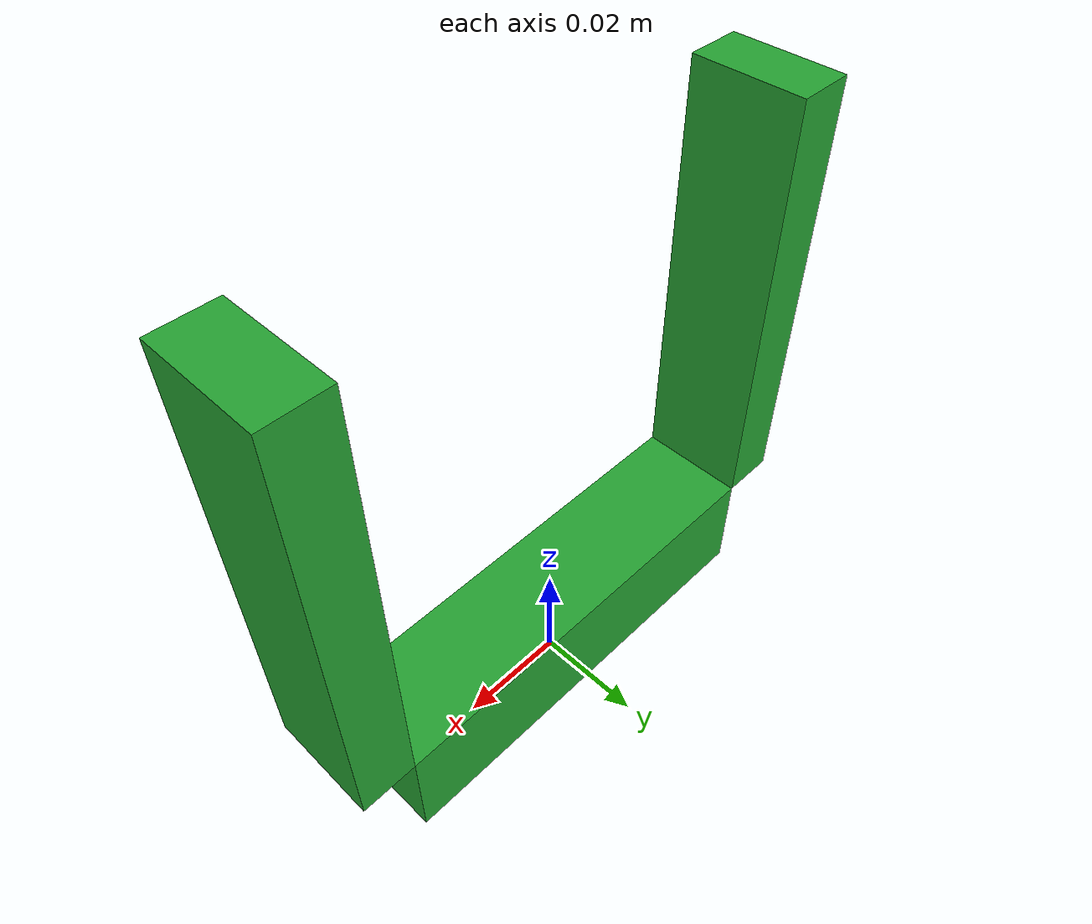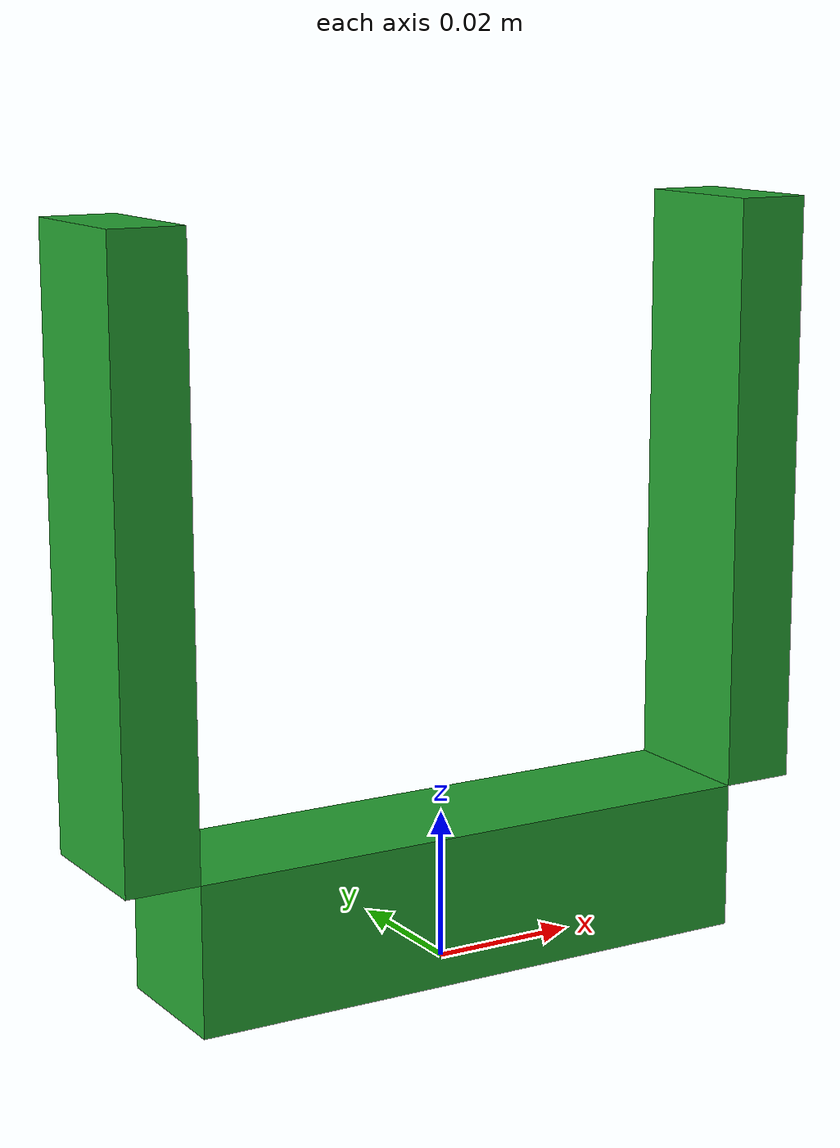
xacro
<?xml version="1.0"?>
<robot xmlns:xacro="http://www.ros.org/wiki/xacro">

    <!-- gripper_base_link - palm / base plate.
         Origin sits on the mounting face at tool_link; the plate extends
         +Z (away from the arm) by 20mm -->
    <link name="gripper_base_link">
        <visual>
            <geometry>
                <box size="0.08 0.02 0.02" />
            </geometry>
            <origin xyz="0 0 0.01" rpy="0 0 0" />
            <material name="dark_green" />
        </visual>
        <collision>
            <geometry>
                <box size="0.08 0.02 0.02" />
            </geometry>
            <origin xyz="0 0 0.01" rpy="0 0 0" />
        </collision>
    </link>

    <!-- gripper_left_finger_link - finger plate, 80mm long along +Z -->
    <link name="gripper_left_finger_link">
        <visual>
            <geometry>
                <box size="0.01 0.02 0.08" />
            </geometry>
            <origin xyz="0 0 0.04" rpy="0 0 0" />
            <material name="light_green" />
        </visual>
        <collision>
            <geometry>
                <box size="0.01 0.02 0.08" />
            </geometry>
            <origin xyz="0 0 0.04" rpy="0 0 0" />
        </collision>
    </link>

    <!-- gripper_right_finger_link - mirror of the left finger -->
    <link name="gripper_right_finger_link">
        <visual>
            <geometry>
                <box size="0.01 0.02 0.08" />
            </geometry>
            <origin xyz="0 0 0.04" rpy="0 0 0" />
            <material name="light_green" />
        </visual>
        <collision>
            <geometry>
                <box size="0.01 0.02 0.08" />
            </geometry>
            <origin xyz="0 0 0.04" rpy="0 0 0" />
        </collision>
    </link>

    <!-- left finger joint - starts at the OPEN position (centre -45mm, inner
         face -40mm) and travels +40mm in X to close -->
    <joint name="gripper_left_finger_joint" type="prismatic">
        <parent link="gripper_base_link" />
        <child link="gripper_left_finger_link" />
        <origin xyz="-0.045 0 0.02" rpy="0 0 0" />
        <axis xyz="1 0 0" />
        <limit effort="100.0" velocity="0.5" lower="0.0" upper="0.04" />
    </joint>

    <!-- right finger joint - mimic of the left one with multiplier -1, so it
         moves the opposite way and keeps the gripper symmetric -->
    <joint name="gripper_right_finger_joint" type="prismatic">
        <parent link="gripper_base_link" />
        <child link="gripper_right_finger_link" />
        <origin xyz="0.045 0 0.02" rpy="0 0 0" />
        <axis xyz="1 0 0" />
        <mimic joint="gripper_left_finger_joint" multiplier="-1.0" />
        <limit effort="100.0" velocity="0.5" lower="-0.04" upper="0.0" />
    </joint>

</robot>
